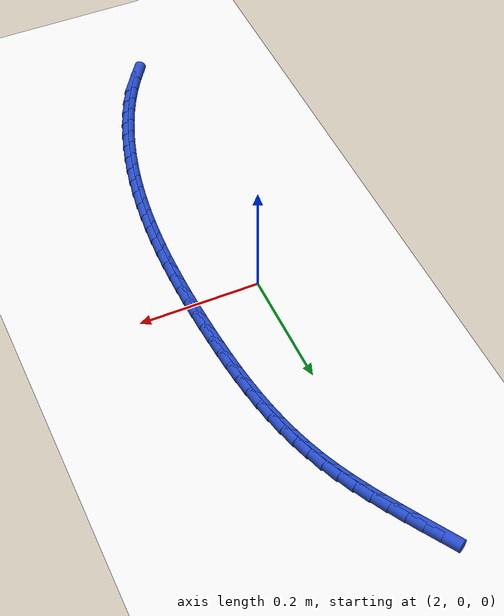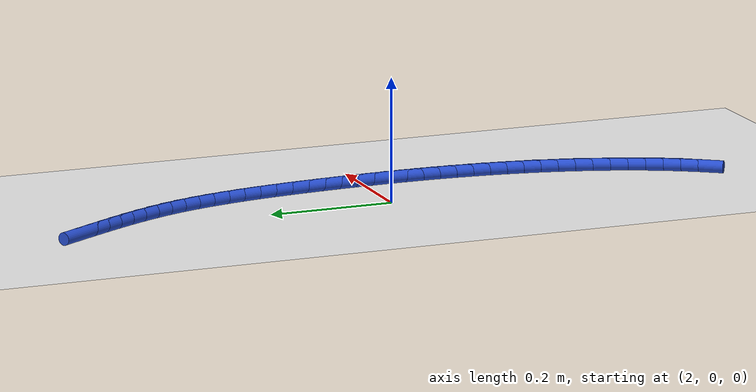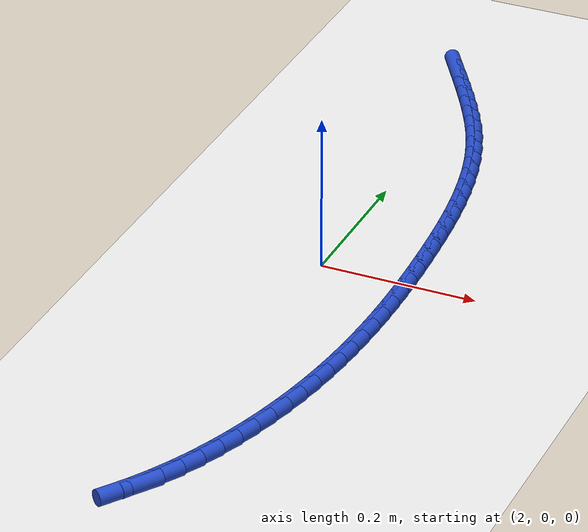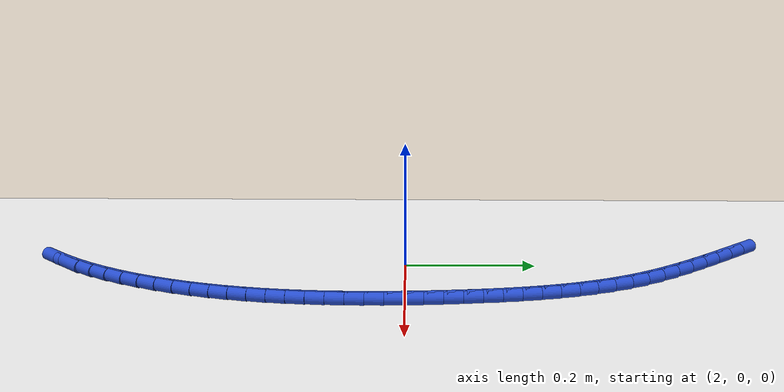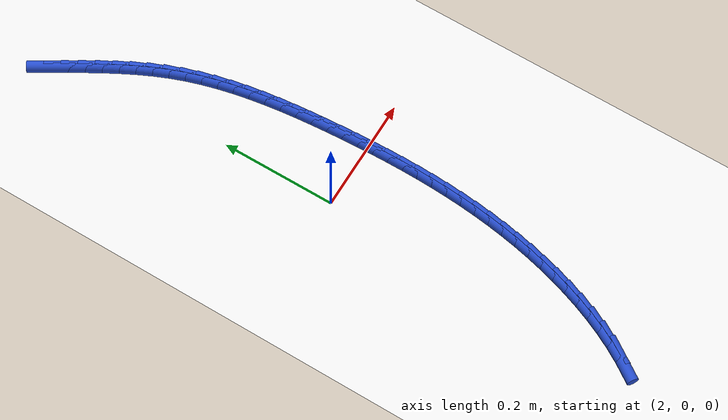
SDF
<sdf version="1.6">
 <world name="default">
  <model name="ground_plane">
   <static>1</static>
   <link name="link">
    <collision name="collision">
     <geometry><plane><normal>0 0 1</normal><size>100 100</size></plane></geometry>
     <surface><friction><ode><mu>100</mu><mu2>50</mu2></ode></friction></surface>
    </collision>
    <visual name="visual">
     <cast_shadows>0</cast_shadows>
     <geometry><plane><normal>0 0 1</normal><size>100 100</size></plane></geometry>
     <material>
      <script><uri>file://media/materials/scripts/gazebo.material</uri><name>Gazebo/WhiteGlow</name></script>
     </material>
    </visual>
   </link>
  </model>
  <model name="line">
   <link name="link_100">
    <pose>1.9658534430049892 0.5182439372726724 0.01 0 1.57 -1.0205119480425129</pose>
    <collision name="collision">
     <geometry><cylinder><radius>0.01</radius><length>0.08</length></cylinder></geometry>
    </collision>
    <visual name="visual">
     <material>
      <script><name>Gazebo/Blue</name><uri>file://media/materials/scripts/gazebo.material</uri></script>
     </material>
     <geometry><cylinder><radius>0.01</radius><length>0.08</length></cylinder></geometry>
    </visual>
   </link>
   <link name="link_101">
    <pose>1.9805756270959236 0.4942467625429519 0.01 0 1.57 -1.027584034571957</pose>
    <collision name="collision">
     <geometry><cylinder><radius>0.01</radius><length>0.08</length></cylinder></geometry>
    </collision>
    <visual name="visual">
     <material>
      <script><name>Gazebo/Blue</name><uri>file://media/materials/scripts/gazebo.material</uri></script>
     </material>
     <geometry><cylinder><radius>0.01</radius><length>0.08</length></cylinder></geometry>
    </visual>
   </link>
   <link name="link_102">
    <pose>1.9951244911435757 0.47015144349971455 0.01 0 1.57 -1.0414350865432203</pose>
    <collision name="collision">
     <geometry><cylinder><radius>0.01</radius><length>0.08</length></cylinder></geometry>
    </collision>
    <visual name="visual">
     <material>
      <script><name>Gazebo/Blue</name><uri>file://media/materials/scripts/gazebo.material</uri></script>
     </material>
     <geometry><cylinder><radius>0.01</radius><length>0.08</length></cylinder></geometry>
    </visual>
   </link>
   <link name="link_103">
    <pose>2.0093157378839623 0.4458953603581048 0.01 0 1.57 -1.0621499600653668</pose>
    <collision name="collision">
     <geometry><cylinder><radius>0.01</radius><length>0.08</length></cylinder></geometry>
    </collision>
    <visual name="visual">
     <material>
      <script><name>Gazebo/Blue</name><uri>file://media/materials/scripts/gazebo.material</uri></script>
     </material>
     <geometry><cylinder><radius>0.01</radius><length>0.08</length></cylinder></geometry>
    </visual>
   </link>
   <link name="link_104">
    <pose>2.0229650700531003 0.42141589333326696 0.01 0 1.57 -1.0898454058800702</pose>
    <collision name="collision">
     <geometry><cylinder><radius>0.01</radius><length>0.08</length></cylinder></geometry>
    </collision>
    <visual name="visual">
     <material>
      <script><name>Gazebo/Blue</name><uri>file://media/materials/scripts/gazebo.material</uri></script>
     </material>
     <geometry><cylinder><radius>0.01</radius><length>0.08</length></cylinder></geometry>
    </visual>
   </link>
   <link name="link_105">
    <pose>2.035888190387005 0.39665042264034633 0.01 0 1.57 -1.1246414334945056</pose>
    <collision name="collision">
     <geometry><cylinder><radius>0.01</radius><length>0.08</length></cylinder></geometry>
    </collision>
    <visual name="visual">
     <material>
      <script><name>Gazebo/Blue</name><uri>file://media/materials/scripts/gazebo.material</uri></script>
     </material>
     <geometry><cylinder><radius>0.01</radius><length>0.08</length></cylinder></geometry>
    </visual>
   </link>
   <link name="link_106">
    <pose>2.047900801621694 0.3715363284944872 0.01 0 1.57 -1.166620510187034</pose>
    <collision name="collision">
     <geometry><cylinder><radius>0.01</radius><length>0.08</length></cylinder></geometry>
    </collision>
    <visual name="visual">
     <material>
      <script><name>Gazebo/Blue</name><uri>file://media/materials/scripts/gazebo.material</uri></script>
     </material>
     <geometry><cylinder><radius>0.01</radius><length>0.08</length></cylinder></geometry>
    </visual>
   </link>
   <link name="link_107">
    <pose>2.058818606493184 0.34601099111083455 0.01 0 1.57 -1.215040180983089</pose>
    <collision name="collision">
     <geometry><cylinder><radius>0.01</radius><length>0.08</length></cylinder></geometry>
    </collision>
    <visual name="visual">
     <material>
      <script><name>Gazebo/Blue</name><uri>file://media/materials/scripts/gazebo.material</uri></script>
     </material>
     <geometry><cylinder><radius>0.01</radius><length>0.08</length></cylinder></geometry>
    </visual>
   </link>
   <link name="link_108">
    <pose>2.068476248232542 0.3200192250488251 0.01 0 1.57 -1.2630410361164</pose>
    <collision name="collision">
     <geometry><cylinder><radius>0.01</radius><length>0.08</length></cylinder></geometry>
    </collision>
    <visual name="visual">
     <material>
      <script><name>Gazebo/Blue</name><uri>file://media/materials/scripts/gazebo.material</uri></script>
     </material>
     <geometry><cylinder><radius>0.01</radius><length>0.08</length></cylinder></geometry>
    </visual>
   </link>
   <link name="link_109">
    <pose>2.0768819789267847 0.2935739881769246 0.01 0 1.57 -1.3068747012392117</pose>
    <collision name="collision">
     <geometry><cylinder><radius>0.01</radius><length>0.08</length></cylinder></geometry>
    </collision>
    <visual name="visual">
     <material>
      <script><name>Gazebo/Blue</name><uri>file://media/materials/scripts/gazebo.material</uri></script>
     </material>
     <geometry><cylinder><radius>0.01</radius><length>0.08</length></cylinder></geometry>
    </visual>
   </link>
   <link name="link_110">
    <pose>2.0841372933922653 0.2667248371193751 0.01 0 1.57 -1.3464547459250875</pose>
    <collision name="collision">
     <geometry><cylinder><radius>0.01</radius><length>0.08</length></cylinder></geometry>
    </collision>
    <visual name="visual">
     <material>
      <script><name>Gazebo/Blue</name><uri>file://media/materials/scripts/gazebo.material</uri></script>
     </material>
     <geometry><cylinder><radius>0.01</radius><length>0.08</length></cylinder></geometry>
    </visual>
   </link>
   <link name="link_111">
    <pose>2.09034457975218 0.23952167913278763 0.01 0 1.57 -1.381797230077032</pose>
    <collision name="collision">
     <geometry><cylinder><radius>0.01</radius><length>0.08</length></cylinder></geometry>
    </collision>
    <visual name="visual">
     <material>
      <script><name>Gazebo/Blue</name><uri>file://media/materials/scripts/gazebo.material</uri></script>
     </material>
     <geometry><cylinder><radius>0.01</radius><length>0.08</length></cylinder></geometry>
    </visual>
   </link>
   <link name="link_112">
    <pose>2.0956062261297266 0.212014421473773 0.01 0 1.57 -1.412964345646461</pose>
    <collision name="collision">
     <geometry><cylinder><radius>0.01</radius><length>0.08</length></cylinder></geometry>
    </collision>
    <visual name="visual">
     <material>
      <script><name>Gazebo/Blue</name><uri>file://media/materials/scripts/gazebo.material</uri></script>
     </material>
     <geometry><cylinder><radius>0.01</radius><length>0.08</length></cylinder></geometry>
    </visual>
   </link>
   <link name="link_113">
    <pose>2.100024620648103 0.1842529713989432 0.01 0 1.57 -1.440045248858083</pose>
    <collision name="collision">
     <geometry><cylinder><radius>0.01</radius><length>0.08</length></cylinder></geometry>
    </collision>
    <visual name="visual">
     <material>
      <script><name>Gazebo/Blue</name><uri>file://media/materials/scripts/gazebo.material</uri></script>
     </material>
     <geometry><cylinder><radius>0.01</radius><length>0.08</length></cylinder></geometry>
    </visual>
   </link>
   <link name="link_114">
    <pose>2.1037021514305074 0.15628723616490897 0.01 0 1.57 -1.4631400976650224</pose>
    <collision name="collision">
     <geometry><cylinder><radius>0.01</radius><length>0.08</length></cylinder></geometry>
    </collision>
    <visual name="visual">
     <material>
      <script><name>Gazebo/Blue</name><uri>file://media/materials/scripts/gazebo.material</uri></script>
     </material>
     <geometry><cylinder><radius>0.01</radius><length>0.08</length></cylinder></geometry>
    </visual>
   </link>
   <link name="link_115">
    <pose>2.106741206600137 0.12816712302828115 0.01 0 1.57 -1.482347292651821</pose>
    <collision name="collision">
     <geometry><cylinder><radius>0.01</radius><length>0.08</length></cylinder></geometry>
    </collision>
    <visual name="visual">
     <material>
      <script><name>Gazebo/Blue</name><uri>file://media/materials/scripts/gazebo.material</uri></script>
     </material>
     <geometry><cylinder><radius>0.01</radius><length>0.08</length></cylinder></geometry>
    </visual>
   </link>
   <link name="link_116">
    <pose>2.109244174280188 0.09994253924567165 0.01 0 1.57 -1.4977535658598222</pose>
    <collision name="collision">
     <geometry><cylinder><radius>0.01</radius><length>0.08</length></cylinder></geometry>
    </collision>
    <visual name="visual">
     <material>
      <script><name>Gazebo/Blue</name><uri>file://media/materials/scripts/gazebo.material</uri></script>
     </material>
     <geometry><cylinder><radius>0.01</radius><length>0.08</length></cylinder></geometry>
    </visual>
   </link>
   <link name="link_117">
    <pose>2.1113134425938602 0.0716633920736913 0.01 0 1.57 -1.5097330350895222</pose>
    <collision name="collision">
     <geometry><cylinder><radius>0.01</radius><length>0.08</length></cylinder></geometry>
    </collision>
    <visual name="visual">
     <material>
      <script><name>Gazebo/Blue</name><uri>file://media/materials/scripts/gazebo.material</uri></script>
     </material>
     <geometry><cylinder><radius>0.01</radius><length>0.08</length></cylinder></geometry>
    </visual>
   </link>
   <link name="link_118">
    <pose>2.1130428424657066 0.04337716964380964 0.01 0 1.57 -1.521429081852297</pose>
    <collision name="collision">
     <geometry><cylinder><radius>0.01</radius><length>0.08</length></cylinder></geometry>
    </collision>
    <visual name="visual">
     <material>
      <script><name>Gazebo/Blue</name><uri>file://media/materials/scripts/gazebo.material</uri></script>
     </material>
     <geometry><cylinder><radius>0.01</radius><length>0.08</length></cylinder></geometry>
    </visual>
   </link>
   <link name="link_119">
    <pose>2.1144396037603133 0.015106877916379673 0.01 0 1.57 -1.5346632644618854</pose>
    <collision name="collision">
     <geometry><cylinder><radius>0.01</radius><length>0.08</length></cylinder></geometry>
    </collision>
    <visual name="visual">
     <material>
      <script><name>Gazebo/Blue</name><uri>file://media/materials/scripts/gazebo.material</uri></script>
     </material>
     <geometry><cylinder><radius>0.01</radius><length>0.08</length></cylinder></geometry>
    </visual>
   </link>
   <link name="link_120">
    <pose>2.115460647366896 -0.013138699525478184 0.01 0 1.57 -1.5494745631688358</pose>
    <collision name="collision">
     <geometry><cylinder><radius>0.01</radius><length>0.08</length></cylinder></geometry>
    </collision>
    <visual name="visual">
     <material>
      <script><name>Gazebo/Blue</name><uri>file://media/materials/scripts/gazebo.material</uri></script>
     </material>
     <geometry><cylinder><radius>0.01</radius><length>0.08</length></cylinder></geometry>
    </visual>
   </link>
   <link name="link_121">
    <pose>2.1160622735724615 -0.041350954543257976 0.01 0 1.57 -1.5658795223888713</pose>
    <collision name="collision">
     <geometry><cylinder><radius>0.01</radius><length>0.08</length></cylinder></geometry>
    </collision>
    <visual name="visual">
     <material>
      <script><name>Gazebo/Blue</name><uri>file://media/materials/scripts/gazebo.material</uri></script>
     </material>
     <geometry><cylinder><radius>0.01</radius><length>0.08</length></cylinder></geometry>
    </visual>
   </link>
   <link name="link_122">
    <pose>2.1162007826640146 -0.06952127899845345 0.01 0 1.57 1.5576992612823624</pose>
    <collision name="collision">
     <geometry><cylinder><radius>0.01</radius><length>0.08</length></cylinder></geometry>
    </collision>
    <visual name="visual">
     <material>
      <script><name>Gazebo/Blue</name><uri>file://media/materials/scripts/gazebo.material</uri></script>
     </material>
     <geometry><cylinder><radius>0.01</radius><length>0.08</length></cylinder></geometry>
    </visual>
   </link>
   <link name="link_123">
    <pose>2.1158324749285615 -0.09764106475255827 0.01 0 1.57 1.538063782604587</pose>
    <collision name="collision">
     <geometry><cylinder><radius>0.01</radius><length>0.08</length></cylinder></geometry>
    </collision>
    <visual name="visual">
     <material>
      <script><name>Gazebo/Blue</name><uri>file://media/materials/scripts/gazebo.material</uri></script>
     </material>
     <geometry><cylinder><radius>0.01</radius><length>0.08</length></cylinder></geometry>
    </visual>
   </link>
   <link name="link_124">
    <pose>2.1149136506531097 -0.1257017036670662 0.01 0 1.57 1.5167979727776215</pose>
    <collision name="collision">
     <geometry><cylinder><radius>0.01</radius><length>0.08</length></cylinder></geometry>
    </collision>
    <visual name="visual">
     <material>
      <script><name>Gazebo/Blue</name><uri>file://media/materials/scripts/gazebo.material</uri></script>
     </material>
     <geometry><cylinder><radius>0.01</radius><length>0.08</length></cylinder></geometry>
    </visual>
   </link>
   <link name="link_125">
    <pose>2.113400610124664 -0.15369458760347166 0.01 0 1.57 1.493898667466999</pose>
    <collision name="collision">
     <geometry><cylinder><radius>0.01</radius><length>0.08</length></cylinder></geometry>
    </collision>
    <visual name="visual">
     <material>
      <script><name>Gazebo/Blue</name><uri>file://media/materials/scripts/gazebo.material</uri></script>
     </material>
     <geometry><cylinder><radius>0.01</radius><length>0.08</length></cylinder></geometry>
    </visual>
   </link>
   <link name="link_126">
    <pose>2.111249653630231 -0.1816111084232669 0.01 0 1.57 1.4693699824782473</pose>
    <collision name="collision">
     <geometry><cylinder><radius>0.01</radius><length>0.08</length></cylinder></geometry>
    </collision>
    <visual name="visual">
     <material>
      <script><name>Gazebo/Blue</name><uri>file://media/materials/scripts/gazebo.material</uri></script>
     </material>
     <geometry><cylinder><radius>0.01</radius><length>0.08</length></cylinder></geometry>
    </visual>
   </link>
   <link name="link_127">
    <pose>2.108417081456816 -0.20944265798794626 0.01 0 1.57 1.4432251406906664</pose>
    <collision name="collision">
     <geometry><cylinder><radius>0.01</radius><length>0.08</length></cylinder></geometry>
    </collision>
    <visual name="visual">
     <material>
      <script><name>Gazebo/Blue</name><uri>file://media/materials/scripts/gazebo.material</uri></script>
     </material>
     <geometry><cylinder><radius>0.01</radius><length>0.08</length></cylinder></geometry>
    </visual>
   </link>
   <link name="link_128">
    <pose>2.1048591938914267 -0.2371806281590036 0.01 0 1.57 1.415488350202008</pose>
    <collision name="collision">
     <geometry><cylinder><radius>0.01</radius><length>0.08</length></cylinder></geometry>
    </collision>
    <visual name="visual">
     <material>
      <script><name>Gazebo/Blue</name><uri>file://media/materials/scripts/gazebo.material</uri></script>
     </material>
     <geometry><cylinder><radius>0.01</radius><length>0.08</length></cylinder></geometry>
    </visual>
   </link>
   <link name="link_129">
    <pose>2.1005322912210675 -0.2648164107979325 0.01 0 1.57 1.3861966591097032</pose>
    <collision name="collision">
     <geometry><cylinder><radius>0.01</radius><length>0.08</length></cylinder></geometry>
    </collision>
    <visual name="visual">
     <material>
      <script><name>Gazebo/Blue</name><uri>file://media/materials/scripts/gazebo.material</uri></script>
     </material>
     <geometry><cylinder><radius>0.01</radius><length>0.08</length></cylinder></geometry>
    </visual>
   </link>
   <link name="link_130">
    <pose>2.0953926737327455 -0.2923413977662268 0.01 0 1.57 1.3554016909524944</pose>
    <collision name="collision">
     <geometry><cylinder><radius>0.01</radius><length>0.08</length></cylinder></geometry>
    </collision>
    <visual name="visual">
     <material>
      <script><name>Gazebo/Blue</name><uri>file://media/materials/scripts/gazebo.material</uri></script>
     </material>
     <geometry><cylinder><radius>0.01</radius><length>0.08</length></cylinder></geometry>
    </visual>
   </link>
   <link name="link_131">
    <pose>2.0893966417134666 -0.3197469809253801 0.01 0 1.57 1.3231711455250543</pose>
    <collision name="collision">
     <geometry><cylinder><radius>0.01</radius><length>0.08</length></cylinder></geometry>
    </collision>
    <visual name="visual">
     <material>
      <script><name>Gazebo/Blue</name><uri>file://media/materials/scripts/gazebo.material</uri></script>
     </material>
     <geometry><cylinder><radius>0.01</radius><length>0.08</length></cylinder></geometry>
    </visual>
   </link>
   <link name="link_132">
    <pose>2.0825004954502364 -0.3470245521368869 0.01 0 1.57 1.2895899348451574</pose>
    <collision name="collision">
     <geometry><cylinder><radius>0.01</radius><length>0.08</length></cylinder></geometry>
    </collision>
    <visual name="visual">
     <material>
      <script><name>Gazebo/Blue</name><uri>file://media/materials/scripts/gazebo.material</uri></script>
     </material>
     <geometry><cylinder><radius>0.01</radius><length>0.08</length></cylinder></geometry>
    </visual>
   </link>
   <link name="link_133">
    <pose>2.074660535226977 -0.3741655031680019 0.01 0 1.57 1.2544783435317768</pose>
    <collision name="collision">
     <geometry><cylinder><radius>0.01</radius><length>0.08</length></cylinder></geometry>
    </collision>
    <visual name="visual">
     <material>
      <script><name>Gazebo/Blue</name><uri>file://media/materials/scripts/gazebo.material</uri></script>
     </material>
     <geometry><cylinder><radius>0.01</radius><length>0.08</length></cylinder></geometry>
    </visual>
   </link>
   <link name="link_134">
    <pose>2.06583229392095 -0.4011377783418549 0.01 0 1.57 1.216696519978977</pose>
    <collision name="collision">
     <geometry><cylinder><radius>0.01</radius><length>0.08</length></cylinder></geometry>
    </collision>
    <visual name="visual">
     <material>
      <script><name>Gazebo/Blue</name><uri>file://media/materials/scripts/gazebo.material</uri></script>
     </material>
     <geometry><cylinder><radius>0.01</radius><length>0.08</length></cylinder></geometry>
    </visual>
   </link>
   <link name="link_135">
    <pose>2.055968379969773 -0.42781996826768565 0.01 0 1.57 1.1756670518471042</pose>
    <collision name="collision">
     <geometry><cylinder><radius>0.01</radius><length>0.08</length></cylinder></geometry>
    </collision>
    <visual name="visual">
     <material>
      <script><name>Gazebo/Blue</name><uri>file://media/materials/scripts/gazebo.material</uri></script>
     </material>
     <geometry><cylinder><radius>0.01</radius><length>0.08</length></cylinder></geometry>
    </visual>
   </link>
   <link name="link_136">
    <pose>2.045020705296711 -0.45406938216347736 0.01 0 1.57 1.1310281730745018</pose>
    <collision name="collision">
     <geometry><cylinder><radius>0.01</radius><length>0.08</length></cylinder></geometry>
    </collision>
    <visual name="visual">
     <material>
      <script><name>Gazebo/Blue</name><uri>file://media/materials/scripts/gazebo.material</uri></script>
     </material>
     <geometry><cylinder><radius>0.01</radius><length>0.08</length></cylinder></geometry>
    </visual>
   </link>
   <link name="link_137">
    <pose>2.0329411818250263 -0.47974332924721297 0.01 0 1.57 1.0824093386403797</pose>
    <collision name="collision">
     <geometry><cylinder><radius>0.01</radius><length>0.08</length></cylinder></geometry>
    </collision>
    <visual name="visual">
     <material>
      <script><name>Gazebo/Blue</name><uri>file://media/materials/scripts/gazebo.material</uri></script>
     </material>
     <geometry><cylinder><radius>0.01</radius><length>0.08</length></cylinder></geometry>
    </visual>
   </link>
   <link name="link_138">
    <pose>2.019681721477983 -0.5046991187368757 0.01 0 1.57 1.0294459630793122</pose>
    <collision name="collision">
     <geometry><cylinder><radius>0.01</radius><length>0.08</length></cylinder></geometry>
    </collision>
    <visual name="visual">
     <material>
      <script><name>Gazebo/Blue</name><uri>file://media/materials/scripts/gazebo.material</uri></script>
     </material>
     <geometry><cylinder><radius>0.01</radius><length>0.08</length></cylinder></geometry>
    </visual>
   </link>
   <link name="link_139">
    <pose>2.0051942361788466 -0.5287940598504488 0.01 0 1.57 0.9718023439021031</pose>
    <collision name="collision">
     <geometry><cylinder><radius>0.01</radius><length>0.08</length></cylinder></geometry>
    </collision>
    <visual name="visual">
     <material>
      <script><name>Gazebo/Blue</name><uri>file://media/materials/scripts/gazebo.material</uri></script>
     </material>
     <geometry><cylinder><radius>0.01</radius><length>0.08</length></cylinder></geometry>
    </visual>
   </link>
  </model>
 </world>
</sdf>
